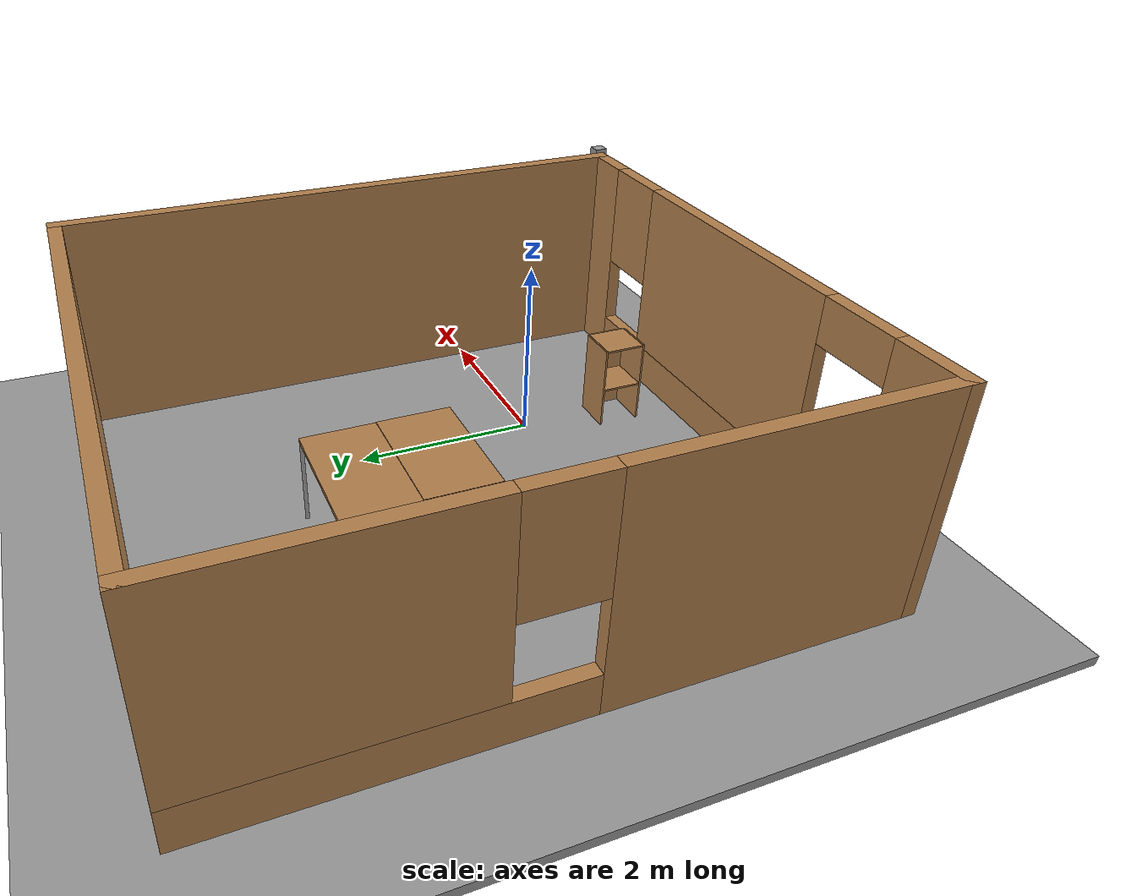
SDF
<sdf version="1.6">
 <world name="default">
  <light name="sun" type="directional">
   <pose>0 0 10 0 -0 0</pose>
   <diffuse>0.8 0.8 0.8 1</diffuse>
   <specular>0.1 0.1 0.1 1</specular>
   <attenuation>
    <range>1000</range>
    <constant>0.9</constant>
    <linear>0.01</linear>
    <quadratic>0.001</quadratic>
   </attenuation>
   <direction>-0.5 0.5 -1</direction>
  </light>
  <model name="ground_plane">
   <static>1</static>
   <link name="link">
    <collision name="collision">
     <geometry><plane><normal>0 0 1</normal><size>100 100</size></plane></geometry>
     <surface><friction><ode><mu>100</mu><mu2>50</mu2></ode></friction></surface>
    </collision>
    <visual name="visual">
     <cast_shadows>0</cast_shadows>
     <geometry><plane><normal>0 0 1</normal><size>100 100</size></plane></geometry>
     <material>
      <script><uri>file://media/materials/scripts/gazebo.material</uri><name>Gazebo/Grey</name></script>
     </material>
    </visual>
   </link>
  </model>
  <gravity>0 0 -9.8</gravity>
  <magnetic_field>6e-06 2.3e-05 -4.2e-05</magnetic_field>
  <atmosphere type="adiabatic"/>
  <physics name="default_physics" default="0" type="ode">
   <max_step_size>0.001</max_step_size>
   <real_time_factor>1</real_time_factor>
   <real_time_update_rate>1000</real_time_update_rate>
  </physics>
  <scene><ambient>0.4 0.4 0.4 1</ambient><background>0.7 0.7 0.7 1</background><shadows>1</shadows></scene>
  <spherical_coordinates>
   <surface_model>EARTH_WGS84</surface_model>
   <latitude_deg>0</latitude_deg>
   <longitude_deg>0</longitude_deg>
   <elevation>0</elevation>
   <heading_deg>0</heading_deg>
  </spherical_coordinates>
  <model name="Untitled">
   <pose>-0.991181 1.38905 0 0 -0 0</pose>
   <link name="Wall_11">
    <pose>-0.131181 -3.24095 0 0 -0 3.14159</pose>
    <visual name="Wall_11_Visual_0">
     <pose>-2.79136 0 1.25 0 -0 0</pose>
     <geometry><box><size>0.667282 0.15 2.5</size></box></geometry>
     <material>
      <script><uri>file://media/materials/scripts/gazebo.material</uri><name>Gazebo/Wood</name></script>
      <ambient>1 1 1 1</ambient>
     </material>
    </visual>
    <collision name="Wall_11_Collision_0">
     <geometry><box><size>0.667282 0.15 2.5</size></box></geometry>
     <pose>-2.79136 0 1.25 0 -0 0</pose>
    </collision>
    <visual name="Wall_11_Visual_1">
     <pose>2.70112 0 1.25 0 -0 0</pose>
     <geometry><box><size>0.84776 0.15 2.5</size></box></geometry>
     <material>
      <script><uri>file://media/materials/scripts/gazebo.material</uri><name>Gazebo/Wood</name></script>
      <ambient>1 1 1 1</ambient>
     </material>
    </visual>
    <collision name="Wall_11_Collision_1">
     <geometry><box><size>0.84776 0.15 2.5</size></box></geometry>
     <pose>2.70112 0 1.25 0 -0 0</pose>
    </collision>
    <visual name="Wall_11_Visual_2">
     <pose>-0.540239 0 0.25 0 -0 0</pose>
     <geometry><box><size>3.83496 0.15 0.5</size></box></geometry>
     <material>
      <script><uri>file://media/materials/scripts/gazebo.material</uri><name>Gazebo/Wood</name></script>
      <ambient>1 1 1 1</ambient>
     </material>
    </visual>
    <collision name="Wall_11_Collision_2">
     <geometry><box><size>3.83496 0.15 0.5</size></box></geometry>
     <pose>-0.540239 0 0.25 0 -0 0</pose>
    </collision>
    <visual name="Wall_11_Visual_3">
     <pose>-0.140239 0 1.5 0 -0 0</pose>
     <geometry><box><size>3.03496 0.15 2</size></box></geometry>
     <material>
      <script><uri>file://media/materials/scripts/gazebo.material</uri><name>Gazebo/Wood</name></script>
      <ambient>1 1 1 1</ambient>
     </material>
    </visual>
    <collision name="Wall_11_Collision_3">
     <geometry><box><size>3.03496 0.15 2</size></box></geometry>
     <pose>-0.140239 0 1.5 0 -0 0</pose>
    </collision>
    <visual name="Wall_11_Visual_4">
     <pose>-2.05772 0 1.9 0 -0 0</pose>
     <geometry><box><size>0.8 0.15 1.2</size></box></geometry>
     <material>
      <script><uri>file://media/materials/scripts/gazebo.material</uri><name>Gazebo/Wood</name></script>
      <ambient>1 1 1 1</ambient>
     </material>
    </visual>
    <collision name="Wall_11_Collision_4">
     <geometry><box><size>0.8 0.15 1.2</size></box></geometry>
     <pose>-2.05772 0 1.9 0 -0 0</pose>
    </collision>
    <visual name="Wall_11_Visual_5">
     <pose>1.82724 0 2.25 0 -0 0</pose>
     <geometry><box><size>0.9 0.15 0.5</size></box></geometry>
     <material>
      <script><uri>file://media/materials/scripts/gazebo.material</uri><name>Gazebo/Wood</name></script>
      <ambient>1 1 1 1</ambient>
     </material>
    </visual>
    <collision name="Wall_11_Collision_5">
     <geometry><box><size>0.9 0.15 0.5</size></box></geometry>
     <pose>1.82724 0 2.25 0 -0 0</pose>
    </collision>
   </link>
   <link name="Wall_12">
    <pose>-3.18118 0.059051 0 0 -0 1.5708</pose>
    <visual name="Wall_12_Visual_0">
     <pose>-1.75631 0 1.25 0 -0 0</pose>
     <geometry><box><size>3.23737 0.15 2.5</size></box></geometry>
     <material>
      <script><uri>file://media/materials/scripts/gazebo.material</uri><name>Gazebo/Wood</name></script>
      <ambient>1 1 1 1</ambient>
     </material>
    </visual>
    <collision name="Wall_12_Collision_0">
     <geometry><box><size>3.23737 0.15 2.5</size></box></geometry>
     <pose>-1.75631 0 1.25 0 -0 0</pose>
    </collision>
    <visual name="Wall_12_Visual_1">
     <pose>1.61869 0 0.25 0 -0 0</pose>
     <geometry><box><size>3.51263 0.15 0.5</size></box></geometry>
     <material>
      <script><uri>file://media/materials/scripts/gazebo.material</uri><name>Gazebo/Wood</name></script>
      <ambient>1 1 1 1</ambient>
     </material>
    </visual>
    <collision name="Wall_12_Collision_1">
     <geometry><box><size>3.51263 0.15 0.5</size></box></geometry>
     <pose>1.61869 0 0.25 0 -0 0</pose>
    </collision>
    <visual name="Wall_12_Visual_2">
     <pose>2.01869 0 1.5 0 -0 0</pose>
     <geometry><box><size>2.71263 0.15 2</size></box></geometry>
     <material>
      <script><uri>file://media/materials/scripts/gazebo.material</uri><name>Gazebo/Wood</name></script>
      <ambient>1 1 1 1</ambient>
     </material>
    </visual>
    <collision name="Wall_12_Collision_2">
     <geometry><box><size>2.71263 0.15 2</size></box></geometry>
     <pose>2.01869 0 1.5 0 -0 0</pose>
    </collision>
    <visual name="Wall_12_Visual_3">
     <pose>0.262373 0 1.9 0 -0 0</pose>
     <geometry><box><size>0.8 0.15 1.2</size></box></geometry>
     <material>
      <script><uri>file://media/materials/scripts/gazebo.material</uri><name>Gazebo/Wood</name></script>
      <ambient>1 1 1 1</ambient>
     </material>
    </visual>
    <collision name="Wall_12_Collision_3">
     <geometry><box><size>0.8 0.15 1.2</size></box></geometry>
     <pose>0.262373 0 1.9 0 -0 0</pose>
    </collision>
   </link>
   <link name="Wall_13">
    <collision name="Wall_13_Collision">
     <geometry><box><size>6.25 0.15 2.5</size></box></geometry>
     <pose>0 0 1.25 0 -0 0</pose>
    </collision>
    <visual name="Wall_13_Visual">
     <pose>0 0 1.25 0 -0 0</pose>
     <geometry><box><size>6.25 0.15 2.5</size></box></geometry>
     <material>
      <script><uri>file://media/materials/scripts/gazebo.material</uri><name>Gazebo/Wood</name></script>
      <ambient>1 1 1 1</ambient>
     </material>
    </visual>
    <pose>-0.131181 3.35905 0 0 -0 0</pose>
   </link>
   <link name="Wall_14">
    <collision name="Wall_14_Collision">
     <geometry><box><size>6.75 0.15 2.5</size></box></geometry>
     <pose>0 0 1.25 0 -0 0</pose>
    </collision>
    <visual name="Wall_14_Visual">
     <pose>0 0 1.25 0 -0 0</pose>
     <geometry><box><size>6.75 0.15 2.5</size></box></geometry>
     <material>
      <script><uri>file://media/materials/scripts/gazebo.material</uri><name>Gazebo/Wood</name></script>
      <ambient>1 1 1 1</ambient>
     </material>
    </visual>
    <pose>2.91882 0.059051 0 0 0 -1.5708</pose>
   </link>
   <link name="Wall_6">
    <collision name="Wall_6_Collision">
     <geometry><box><size>0.15 0.15 2.5</size></box></geometry>
     <pose>0 0 1.25 0 -0 0</pose>
    </collision>
    <visual name="Wall_6_Visual">
     <pose>0 0 1.25 0 -0 0</pose>
     <geometry><box><size>0.15 0.15 2.5</size></box></geometry>
     <material>
      <script><uri>file://media/materials/scripts/gazebo.material</uri><name>Gazebo/Grey</name></script>
      <ambient>1 1 1 1</ambient>
     </material>
    </visual>
    <pose>3.18118 -3.35905 0 0 -0 0</pose>
   </link>
   <static>1</static>
  </model>
  <model name="table">
   <static>1</static>
   <link name="link">
    <collision name="surface">
     <pose>0 0 1 0 -0 0</pose>
     <geometry><box><size>1.5 0.8 0.03</size></box></geometry>
     <surface><friction><ode><mu>0.6</mu><mu2>0.6</mu2></ode></friction></surface>
    </collision>
    <visual name="visual1">
     <pose>0 0 1 0 -0 0</pose>
     <geometry><box><size>1.4 0.8 0.04</size></box></geometry>
     <material>
      <script><uri>file://media/materials/scripts/gazebo.material</uri><name>Gazebo/Wood</name></script>
     </material>
    </visual>
    <collision name="front_left_leg">
     <pose>0.68 0.38 0.5 0 -0 0</pose>
     <geometry><cylinder><radius>0.02</radius><length>1</length></cylinder></geometry>
    </collision>
    <visual name="front_left_leg">
     <pose>0.68 0.38 0.5 0 -0 0</pose>
     <geometry><cylinder><radius>0.02</radius><length>1</length></cylinder></geometry>
     <material>
      <script><uri>file://media/materials/scripts/gazebo.material</uri><name>Gazebo/Grey</name></script>
     </material>
    </visual>
    <collision name="front_right_leg">
     <pose>0.68 -0.38 0.5 0 -0 0</pose>
     <geometry><cylinder><radius>0.02</radius><length>1</length></cylinder></geometry>
    </collision>
    <visual name="front_right_leg">
     <pose>0.68 -0.38 0.5 0 -0 0</pose>
     <geometry><cylinder><radius>0.02</radius><length>1</length></cylinder></geometry>
     <material>
      <script><uri>file://media/materials/scripts/gazebo.material</uri><name>Gazebo/Grey</name></script>
     </material>
    </visual>
    <collision name="back_right_leg">
     <pose>-0.68 -0.38 0.5 0 -0 0</pose>
     <geometry><cylinder><radius>0.02</radius><length>1</length></cylinder></geometry>
    </collision>
    <visual name="back_right_leg">
     <pose>-0.68 -0.38 0.5 0 -0 0</pose>
     <geometry><cylinder><radius>0.02</radius><length>1</length></cylinder></geometry>
     <material>
      <script><uri>file://media/materials/scripts/gazebo.material</uri><name>Gazebo/Grey</name></script>
     </material>
    </visual>
    <collision name="back_left_leg">
     <pose>-0.68 0.38 0.5 0 -0 0</pose>
     <geometry><cylinder><radius>0.02</radius><length>1</length></cylinder></geometry>
    </collision>
    <visual name="back_left_leg">
     <pose>-0.68 0.38 0.5 0 -0 0</pose>
     <geometry><cylinder><radius>0.02</radius><length>1</length></cylinder></geometry>
     <material>
      <script><uri>file://media/materials/scripts/gazebo.material</uri><name>Gazebo/Grey</name></script>
     </material>
    </visual>
    <inertial>
     <inertia><ixx>1</ixx><ixy>0</ixy><ixz>0</ixz><iyy>1</iyy><iyz>0</iyz><izz>1</izz></inertia>
     <mass>1</mass>
    </inertial>
   </link>
   <pose>-1.53671 2.48432 -9e-06 0 -1e-06 0</pose>
  </model>
  <model name="ground_plane_0">
   <static>1</static>
   <link name="link">
    <collision name="collision">
     <geometry><plane><normal>0 0 1</normal><size>100 100</size></plane></geometry>
     <surface><friction><ode><mu>100</mu><mu2>50</mu2></ode></friction></surface>
    </collision>
    <visual name="visual">
     <cast_shadows>0</cast_shadows>
     <geometry><plane><normal>0 0 1</normal><size>100 100</size></plane></geometry>
     <material>
      <script><uri>file://media/materials/scripts/gazebo.material</uri><name>Gazebo/Grey</name></script>
     </material>
    </visual>
   </link>
   <pose>-2.20275 0.370893 0 0 -0 0</pose>
  </model>
  <model name="cabinet">
   <static>1</static>
   <link name="cabinet_bottom_plate">
    <inertial>
     <pose>0 0 -1 0 -0 0</pose>
     <inertia><ixx>2.05</ixx><ixy>0</ixy><ixz>0</ixz><iyy>2.05</iyy><iyz>0</iyz><izz>2.05</izz></inertia>
     <mass>25</mass>
    </inertial>
    <collision name="cabinet_bottom_plate_geom">
     <pose>0 0 0.01 0 -0 0</pose>
     <geometry><box><size>0.45 0.45 0.02</size></box></geometry>
    </collision>
    <visual name="cabinet_bottom_plate_geom_visual">
     <pose>0 0 0.01 0 -0 0</pose>
     <geometry><box><size>0.45 0.45 0.02</size></box></geometry>
     <material>
      <script><uri>file://media/materials/scripts/gazebo.material</uri><name>Gazebo/Wood</name></script>
     </material>
    </visual>
    <collision name="cabinet_bottom_plate_geom_cabinet_back_plate">
     <pose>0.235 0 0.51 0 -0 0</pose>
     <geometry><box><size>0.02 0.45 1.02</size></box></geometry>
    </collision>
    <visual name="cabinet_bottom_plate_geom_cabinet_back_plate_visual">
     <pose>0.235 0 0.51 0 -0 0</pose>
     <geometry><box><size>0.02 0.45 1.02</size></box></geometry>
     <material>
      <script><uri>file://media/materials/scripts/gazebo.material</uri><name>Gazebo/Wood</name></script>
     </material>
    </visual>
    <collision name="cabinet_bottom_plate_geom_cabinet_left_plate">
     <pose>0 0.235 0.51 0 -0 0</pose>
     <geometry><box><size>0.45 0.02 1.02</size></box></geometry>
    </collision>
    <visual name="cabinet_bottom_plate_geom_cabinet_left_plate_visual">
     <pose>0 0.235 0.51 0 -0 0</pose>
     <geometry><box><size>0.45 0.02 1.02</size></box></geometry>
     <material>
      <script><uri>file://media/materials/scripts/gazebo.material</uri><name>Gazebo/Wood</name></script>
     </material>
    </visual>
    <collision name="cabinet_bottom_plate_geom_cabinet_middle_plate">
     <pose>0 0 0.51 0 -0 0</pose>
     <geometry><box><size>0.45 0.45 0.02</size></box></geometry>
    </collision>
    <visual name="cabinet_bottom_plate_geom_cabinet_middle_plate_visual">
     <pose>0 0 0.51 0 -0 0</pose>
     <geometry><box><size>0.45 0.45 0.02</size></box></geometry>
     <material>
      <script><uri>file://media/materials/scripts/gazebo.material</uri><name>Gazebo/Wood</name></script>
     </material>
    </visual>
    <collision name="cabinet_bottom_plate_geom_cabinet_right_plate">
     <pose>0 -0.235 0.51 0 -0 0</pose>
     <geometry><box><size>0.45 0.02 1.02</size></box></geometry>
    </collision>
    <visual name="cabinet_bottom_plate_geom_cabinet_right_plate_visual">
     <pose>0 -0.235 0.51 0 -0 0</pose>
     <geometry><box><size>0.45 0.02 1.02</size></box></geometry>
     <material>
      <script><uri>file://media/materials/scripts/gazebo.material</uri><name>Gazebo/Wood</name></script>
     </material>
    </visual>
    <collision name="cabinet_bottom_plate_geom_cabinet_top_plate">
     <pose>0 0 1.01 0 -0 0</pose>
     <geometry><box><size>0.45 0.45 0.02</size></box></geometry>
    </collision>
    <visual name="cabinet_bottom_plate_geom_cabinet_top_plate_visual">
     <pose>0 0 1.01 0 -0 0</pose>
     <geometry><box><size>0.45 0.45 0.02</size></box></geometry>
     <material>
      <script><uri>file://media/materials/scripts/gazebo.material</uri><name>Gazebo/Wood</name></script>
     </material>
    </visual>
   </link>
   <pose>-0.146469 -1.05302 0 0 -0 0</pose>
  </model>
  <model name="table_0">
   <static>1</static>
   <link name="link">
    <collision name="surface">
     <pose>0 0 1 0 -0 0</pose>
     <geometry><box><size>1.5 0.8 0.03</size></box></geometry>
     <surface><friction><ode><mu>0.6</mu><mu2>0.6</mu2></ode></friction></surface>
    </collision>
    <visual name="visual1">
     <pose>0 0 1 0 -0 0</pose>
     <geometry><box><size>1.4 0.8 0.04</size></box></geometry>
     <material>
      <script><uri>file://media/materials/scripts/gazebo.material</uri><name>Gazebo/Wood</name></script>
     </material>
    </visual>
    <collision name="front_left_leg">
     <pose>0.68 0.38 0.5 0 -0 0</pose>
     <geometry><cylinder><radius>0.02</radius><length>1</length></cylinder></geometry>
    </collision>
    <visual name="front_left_leg">
     <pose>0.68 0.38 0.5 0 -0 0</pose>
     <geometry><cylinder><radius>0.02</radius><length>1</length></cylinder></geometry>
     <material>
      <script><uri>file://media/materials/scripts/gazebo.material</uri><name>Gazebo/Grey</name></script>
     </material>
    </visual>
    <collision name="front_right_leg">
     <pose>0.68 -0.38 0.5 0 -0 0</pose>
     <geometry><cylinder><radius>0.02</radius><length>1</length></cylinder></geometry>
    </collision>
    <visual name="front_right_leg">
     <pose>0.68 -0.38 0.5 0 -0 0</pose>
     <geometry><cylinder><radius>0.02</radius><length>1</length></cylinder></geometry>
     <material>
      <script><uri>file://media/materials/scripts/gazebo.material</uri><name>Gazebo/Grey</name></script>
     </material>
    </visual>
    <collision name="back_right_leg">
     <pose>-0.68 -0.38 0.5 0 -0 0</pose>
     <geometry><cylinder><radius>0.02</radius><length>1</length></cylinder></geometry>
    </collision>
    <visual name="back_right_leg">
     <pose>-0.68 -0.38 0.5 0 -0 0</pose>
     <geometry><cylinder><radius>0.02</radius><length>1</length></cylinder></geometry>
     <material>
      <script><uri>file://media/materials/scripts/gazebo.material</uri><name>Gazebo/Grey</name></script>
     </material>
    </visual>
    <collision name="back_left_leg">
     <pose>-0.68 0.38 0.5 0 -0 0</pose>
     <geometry><cylinder><radius>0.02</radius><length>1</length></cylinder></geometry>
    </collision>
    <visual name="back_left_leg">
     <pose>-0.68 0.38 0.5 0 -0 0</pose>
     <geometry><cylinder><radius>0.02</radius><length>1</length></cylinder></geometry>
     <material>
      <script><uri>file://media/materials/scripts/gazebo.material</uri><name>Gazebo/Grey</name></script>
     </material>
    </visual>
    <inertial>
     <inertia><ixx>1</ixx><ixy>0</ixy><ixz>0</ixz><iyy>1</iyy><iyz>0</iyz><izz>1</izz></inertia>
     <mass>1</mass>
    </inertial>
   </link>
   <pose>-1.52695 1.68112 -1e-06 0 1e-06 0</pose>
  </model>
 </world>
</sdf>
